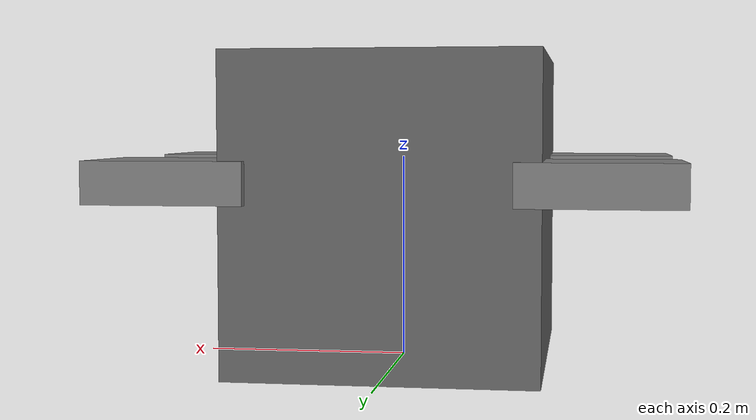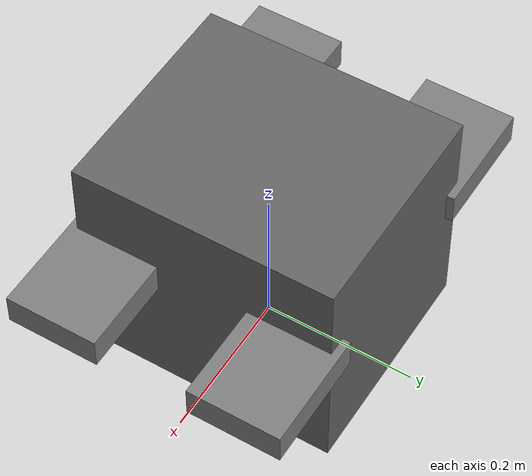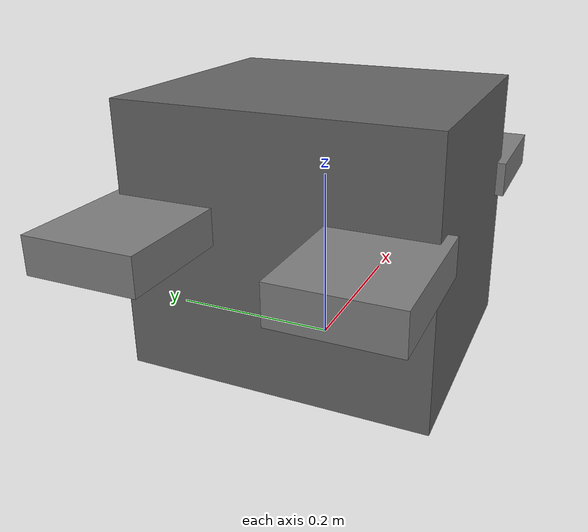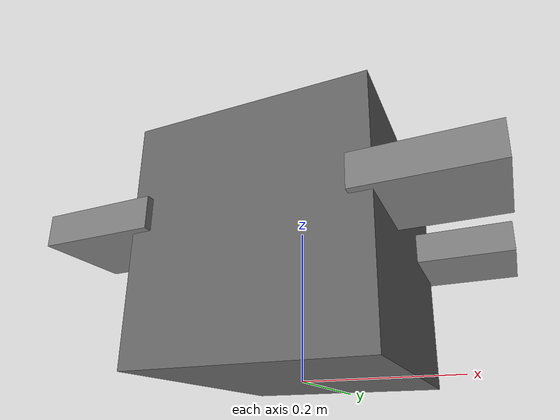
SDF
<sdf version="1.6">
    <model name="car_engine2">
        <allow_auto_disable>true</allow_auto_disable>
        <link name="body">
            <kinematic>true</kinematic>
            <pose>0 0 0.15 0 0 0 0</pose>
            <visual name="visual">
                <geometry>
                    <box>
                        <size>0.29 0.34 0.30</size>
                    </box>
                </geometry>
                <material>
                    <ambient>0.4 0.4 0.4 1.0</ambient>
                    <diffuse>0.4 0.4 0.4 1.0</diffuse>
                </material>
            </visual>
            <collision name="collision">
                <geometry>
                    <box>
                        <size>0.29 0.34 0.30</size>
                    </box>
                </geometry>
            </collision>
        </link>
        <link name="lift_tab1">
            <kinematic>true</kinematic>
            <pose>0.195 0.12 0.18 0 0 0 0</pose>
            <visual name="visual">
                <geometry>
                    <box>
                        <size>0.15 0.12 0.04</size>
                    </box>
                </geometry>
                <material>
                    <ambient>0.5 0.5 0.5 1.0</ambient>
                    <diffuse>0.5 0.5 0.5 1.0</diffuse>
                </material>
            </visual>
            <collision name="collision">
                <geometry>
                    <box>
                        <size>0.15 0.12 0.04</size>
                    </box>
                </geometry>
            </collision>
        </link>
        <link name="lift_tab2">
            <kinematic>true</kinematic>
            <pose>0.195 -0.12 0.18 0 0 0 0</pose>
            <visual name="visual">
                <geometry>
                    <box>
                        <size>0.15 0.12 0.04</size>
                    </box>
                </geometry>
                <material>
                    <ambient>0.5 0.5 0.5 1.0</ambient>
                    <diffuse>0.5 0.5 0.5 1.0</diffuse>
                </material>
            </visual>
            <collision name="collision">
                <geometry>
                    <box>
                        <size>0.15 0.12 0.04</size>
                    </box>
                </geometry>
            </collision>
        </link>
        <link name="lift_tab3">
            <kinematic>true</kinematic>
            <pose>-0.195 0.12 0.18 0 0 0 0</pose>
            <visual name="visual">
                <geometry>
                    <box>
                        <size>0.15 0.12 0.04</size>
                    </box>
                </geometry>
                <material>
                    <ambient>0.5 0.5 0.5 1.0</ambient>
                    <diffuse>0.5 0.5 0.5 1.0</diffuse>
                </material>
            </visual>
            <collision name="collision">
                <geometry>
                    <box>
                        <size>0.15 0.12 0.04</size>
                    </box>
                </geometry>
            </collision>
        </link>
        <link name="lift_tab4">
            <kinematic>true</kinematic>
            <pose>-0.195 -0.12 0.18 0 0 0 0</pose>
            <visual name="visual">
                <geometry>
                    <box>
                        <size>0.15 0.12 0.04</size>
                    </box>
                </geometry>
                <material>
                    <ambient>0.5 0.5 0.5 1.0</ambient>
                    <diffuse>0.5 0.5 0.5 1.0</diffuse>
                </material>
            </visual>
            <collision name="collision">
                <geometry>
                    <box>
                        <size>0.15 0.12 0.04</size>
                    </box>
                </geometry>
            </collision>
        </link>
    </model>
</sdf>
